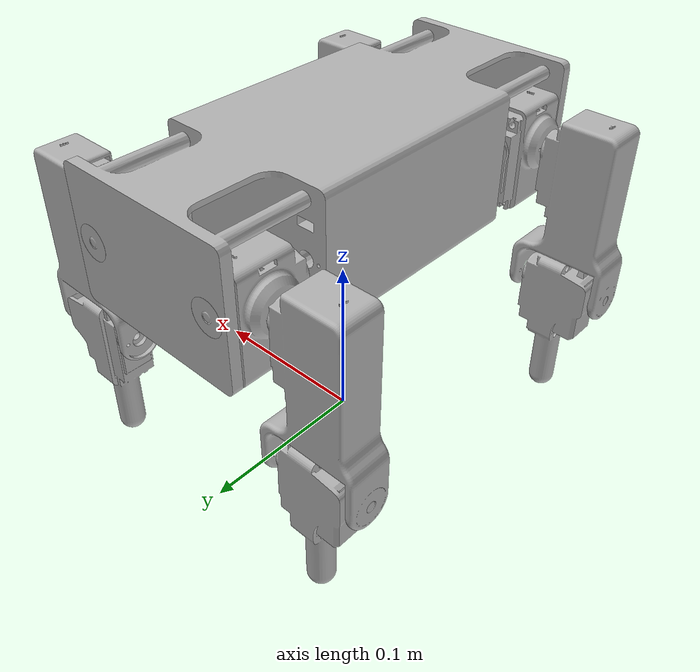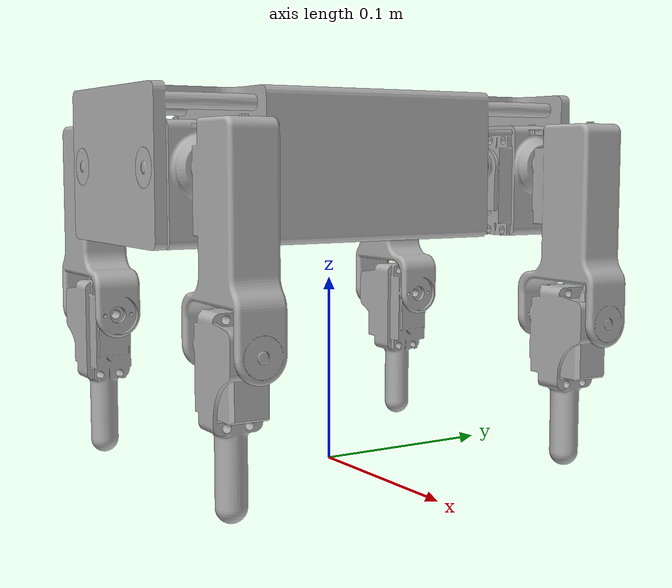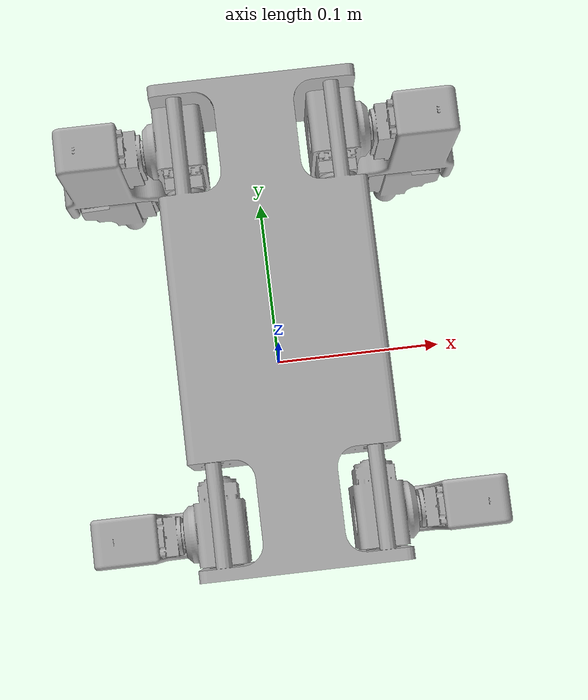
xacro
<?xml version="1.0"?>
<robot name="paws" xmlns:xacro="http://www.ros.org/wiki/xacro">

  <!-- Import all Gazebo-customization elements, including Gazebo colors -->
  <xacro:include filename="$(find paws_description)/urdf/paws.gazebo" />
  <!-- Import Rviz colors -->
  <xacro:include filename="$(find paws_description)/urdf/materials.xacro" />

  <!-- Used for fixing robot to Gazebo 'base_link' -->

  <link name="base_link">
    <inertial>
      <origin xyz="-3.3887279061704396e-14 3.7803002080373026e-07 0.16299137297864616" rpy="0 0 0"/>
      <mass value="2.7836724510562636"/>
      <inertia ixx="0.018553" iyy="0.005153" izz="0.019613" ixy="-0.0" iyz="-0.0" ixz="0.0"/>
    </inertial>
    <visual>
      <origin xyz="0 0 0" rpy="0 0 0"/>
      <geometry>
        <mesh filename="package://paws_description/meshes/base_link.stl" scale="0.001 0.001 0.001"/>
      </geometry>
      <material name="silver"/>
    </visual>
    <collision>
      <origin xyz="0 0 0" rpy="0 0 0"/>
      <geometry>
        <mesh filename="package://paws_description/meshes/base_link.stl" scale="0.001 0.001 0.001"/>
      </geometry>
    </collision>
  </link>

  <link name="lf_link1">
    <inertial>
      <origin xyz="0.0007585154143309389 0.0265191244166023 -0.008803891313980683" rpy="0 0 0"/>
      <mass value="0.38176859480845493"/>
      <inertia ixx="0.000142" iyy="0.000107" izz="7.6e-05" ixy="1e-06" iyz="4e-06" ixz="-2e-06"/>
    </inertial>
    <visual>
      <origin xyz="-0.04 0.1239 -0.16" rpy="0 0 0"/>
      <geometry>
        <mesh filename="package://paws_description/meshes/lf_link1.stl" scale="0.001 0.001 0.001"/>
      </geometry>
      <material name="silver"/>
    </visual>
    <collision>
      <origin xyz="-0.04 0.1239 -0.16" rpy="0 0 0"/>
      <geometry>
        <mesh filename="package://paws_description/meshes/lf_link1.stl" scale="0.001 0.001 0.001"/>
      </geometry>
    </collision>
  </link>

  <link name="lf_link2">
    <inertial>
      <origin xyz="0.0238860864943441 8.066394597272541e-07 -0.023964271594988623" rpy="0 0 0"/>
      <mass value="0.5117382840662367"/>
      <inertia ixx="0.000396" iyy="0.000467" izz="0.000124" ixy="0.0" iyz="-0.0" ixz="4e-06"/>
    </inertial>
    <visual>
      <origin xyz="-0.0589 0.1 -0.16" rpy="0 0 0"/>
      <geometry>
        <mesh filename="package://paws_description/meshes/lf_link2.stl" scale="0.001 0.001 0.001"/>
      </geometry>
      <material name="silver"/>
    </visual>
    <collision>
      <origin xyz="-0.0589 0.1 -0.16" rpy="0 0 0"/>
      <geometry>
        <mesh filename="package://paws_description/meshes/lf_link2.stl" scale="0.001 0.001 0.001"/>
      </geometry>
    </collision>
  </link>

  <link name="lf_link3">
    <inertial>
      <origin xyz="-0.02949298714149677 9.504231460039092e-07 -0.016772643855060942" rpy="0 0 0"/>
      <mass value="0.36719687455213457"/>
      <inertia ixx="0.000187" iyy="0.000211" izz="5.3e-05" ixy="0.0" iyz="-0.0" ixz="-8e-06"/>
    </inertial>
    <visual>
      <origin xyz="-0.1101 0.1 -0.08" rpy="0 0 0"/>
      <geometry>
        <mesh filename="package://paws_description/meshes/lf_link3.stl" scale="0.001 0.001 0.001"/>
      </geometry>
      <material name="silver"/>
    </visual>
    <collision>
      <origin xyz="-0.1101 0.1 -0.08" rpy="0 0 0"/>
      <geometry>
        <mesh filename="package://paws_description/meshes/lf_link3.stl" scale="0.001 0.001 0.001"/>
      </geometry>
    </collision>
  </link>

  <link name="rf_link1">
    <inertial>
      <origin xyz="-0.0007584708324424178 0.02651901736137817 -0.008804175214866011" rpy="0 0 0"/>
      <mass value="0.3817617631156426"/>
      <inertia ixx="0.000142" iyy="0.000107" izz="7.6e-05" ixy="-1e-06" iyz="4e-06" ixz="2e-06"/>
    </inertial>
    <visual>
      <origin xyz="0.04 0.1239 -0.16" rpy="0 0 0"/>
      <geometry>
        <mesh filename="package://paws_description/meshes/rf_link1.stl" scale="0.001 0.001 0.001"/>
      </geometry>
      <material name="silver"/>
    </visual>
    <collision>
      <origin xyz="0.04 0.1239 -0.16" rpy="0 0 0"/>
      <geometry>
        <mesh filename="package://paws_description/meshes/rf_link1.stl" scale="0.001 0.001 0.001"/>
      </geometry>
    </collision>
  </link>

  <link name="rf_link2">
    <inertial>
      <origin xyz="-0.023886086494344157 8.066394596439874e-07 -0.023964271594988235" rpy="0 0 0"/>
      <mass value="0.5117382840662329"/>
      <inertia ixx="0.000396" iyy="0.000467" izz="0.000124" ixy="-0.0" iyz="-0.0" ixz="-4e-06"/>
    </inertial>
    <visual>
      <origin xyz="0.0589 0.1 -0.16" rpy="0 0 0"/>
      <geometry>
        <mesh filename="package://paws_description/meshes/rf_link2.stl" scale="0.001 0.001 0.001"/>
      </geometry>
      <material name="silver"/>
    </visual>
    <collision>
      <origin xyz="0.0589 0.1 -0.16" rpy="0 0 0"/>
      <geometry>
        <mesh filename="package://paws_description/meshes/rf_link2.stl" scale="0.001 0.001 0.001"/>
      </geometry>
    </collision>
  </link>

  <link name="rf_link3">
    <inertial>
      <origin xyz="0.02949298714149677 9.50423145948398e-07 -0.016772643855060956" rpy="0 0 0"/>
      <mass value="0.36719687455213446"/>
      <inertia ixx="0.000187" iyy="0.000211" izz="5.3e-05" ixy="-0.0" iyz="-0.0" ixz="8e-06"/>
    </inertial>
    <visual>
      <origin xyz="0.1101 0.1 -0.08" rpy="0 0 0"/>
      <geometry>
        <mesh filename="package://paws_description/meshes/rf_link3.stl" scale="0.001 0.001 0.001"/>
      </geometry>
      <material name="silver"/>
    </visual>
    <collision>
      <origin xyz="0.1101 0.1 -0.08" rpy="0 0 0"/>
      <geometry>
        <mesh filename="package://paws_description/meshes/rf_link3.stl" scale="0.001 0.001 0.001"/>
      </geometry>
    </collision>
  </link>

  <link name="lh_link1">
    <inertial>
      <origin xyz="0.0007585154143309389 -0.026518383277426172 -0.008804228882141801" rpy="0 0 0"/>
      <mass value="0.38176859480845515"/>
      <inertia ixx="0.000142" iyy="0.000107" izz="7.6e-05" ixy="-1e-06" iyz="-4e-06" ixz="-2e-06"/>
    </inertial>
    <visual>
      <origin xyz="-0.04 -0.1239 -0.16" rpy="0 0 0"/>
      <geometry>
        <mesh filename="package://paws_description/meshes/lh_link1.stl" scale="0.001 0.001 0.001"/>
      </geometry>
      <material name="silver"/>
    </visual>
    <collision>
      <origin xyz="-0.04 -0.1239 -0.16" rpy="0 0 0"/>
      <geometry>
        <mesh filename="package://paws_description/meshes/lh_link1.stl" scale="0.001 0.001 0.001"/>
      </geometry>
    </collision>
  </link>

  <link name="lh_link2">
    <inertial>
      <origin xyz="0.023886086494346807 -6.550028022744847e-08 -0.02396427159498435" rpy="0 0 0"/>
      <mass value="0.511738284066218"/>
      <inertia ixx="0.000396" iyy="0.000467" izz="0.000124" ixy="-0.0" iyz="0.0" ixz="4e-06"/>
    </inertial>
    <visual>
      <origin xyz="-0.0589 -0.1 -0.16" rpy="0 0 0"/>
      <geometry>
        <mesh filename="package://paws_description/meshes/lh_link2.stl" scale="0.001 0.001 0.001"/>
      </geometry>
      <material name="silver"/>
    </visual>
    <collision>
      <origin xyz="-0.0589 -0.1 -0.16" rpy="0 0 0"/>
      <geometry>
        <mesh filename="package://paws_description/meshes/lh_link2.stl" scale="0.001 0.001 0.001"/>
      </geometry>
    </collision>
  </link>

  <link name="lh_link3">
    <inertial>
      <origin xyz="-0.02949298707436432 -2.0928396962660578e-07 -0.016772643855060318" rpy="0 0 0"/>
      <mass value="0.3671968745521462"/>
      <inertia ixx="0.000187" iyy="0.000211" izz="5.3e-05" ixy="-0.0" iyz="0.0" ixz="-8e-06"/>
    </inertial>
    <visual>
      <origin xyz="-0.1101 -0.1 -0.08" rpy="0 0 0"/>
      <geometry>
        <mesh filename="package://paws_description/meshes/lh_link3.stl" scale="0.001 0.001 0.001"/>
      </geometry>
      <material name="silver"/>
    </visual>
    <collision>
      <origin xyz="-0.1101 -0.1 -0.08" rpy="0 0 0"/>
      <geometry>
        <mesh filename="package://paws_description/meshes/lh_link3.stl" scale="0.001 0.001 0.001"/>
      </geometry>
    </collision>
  </link>

  <link name="rh_link1">
    <inertial>
      <origin xyz="-0.0007584708324424178 -0.026518276222201986 -0.008804260079128517" rpy="0 0 0"/>
      <mass value="0.38176176311564275"/>
      <inertia ixx="0.000142" iyy="0.000107" izz="7.6e-05" ixy="1e-06" iyz="-4e-06" ixz="2e-06"/>
    </inertial>
    <visual>
      <origin xyz="0.04 -0.1239 -0.16" rpy="0 0 0"/>
      <geometry>
        <mesh filename="package://paws_description/meshes/rh_link1.stl" scale="0.001 0.001 0.001"/>
      </geometry>
      <material name="silver"/>
    </visual>
    <collision>
      <origin xyz="0.04 -0.1239 -0.16" rpy="0 0 0"/>
      <geometry>
        <mesh filename="package://paws_description/meshes/rh_link1.stl" scale="0.001 0.001 0.001"/>
      </geometry>
    </collision>
  </link>

  <link name="rh_link2">
    <inertial>
      <origin xyz="-0.023886086494346558 -6.550028014418174e-08 -0.023964271594984987" rpy="0 0 0"/>
      <mass value="0.5117382840662275"/>
      <inertia ixx="0.000396" iyy="0.000467" izz="0.000124" ixy="0.0" iyz="0.0" ixz="-4e-06"/>
    </inertial>
    <visual>
      <origin xyz="0.0589 -0.1 -0.16" rpy="0 0 0"/>
      <geometry>
        <mesh filename="package://paws_description/meshes/rh_link2.stl" scale="0.001 0.001 0.001"/>
      </geometry>
      <material name="silver"/>
    </visual>
    <collision>
      <origin xyz="0.0589 -0.1 -0.16" rpy="0 0 0"/>
      <geometry>
        <mesh filename="package://paws_description/meshes/rh_link2.stl" scale="0.001 0.001 0.001"/>
      </geometry>
    </collision>
  </link>

  <link name="rh_link3">
    <inertial>
      <origin xyz="0.02949298707436461 -2.0928396968211693e-07 -0.016772643855060415" rpy="0 0 0"/>
      <mass value="0.3671968745521463"/>
      <inertia ixx="0.000187" iyy="0.000211" izz="5.3e-05" ixy="0.0" iyz="0.0" ixz="8e-06"/>
    </inertial>
    <visual>
      <origin xyz="0.1101 -0.1 -0.08" rpy="0 0 0"/>
      <geometry>
        <mesh filename="package://paws_description/meshes/rh_link3.stl" scale="0.001 0.001 0.001"/>
      </geometry>
      <material name="silver"/>
    </visual>
    <collision>
      <origin xyz="0.1101 -0.1 -0.08" rpy="0 0 0"/>
      <geometry>
        <mesh filename="package://paws_description/meshes/rh_link3.stl" scale="0.001 0.001 0.001"/>
      </geometry>
    </collision>
  </link>

  <joint name="lf_j1" type="continuous">
    <origin xyz="0.04 -0.1239 0.16" rpy="0 0 0"/>
    <parent link="base_link"/>
    <child link="lf_link1"/>
    <axis xyz="0.0 1.0 0.0"/>
    <dynamics damping="0.2"/>
  </joint>

  <joint name="lf_j2" type="continuous">
    <origin xyz="0.0189 0.0239 0.0" rpy="0 0 0"/>
    <parent link="lf_link1"/>
    <child link="lf_link2"/>
    <axis xyz="-1.0 0.0 0.0"/>
    <dynamics damping="0.2"/>
  </joint>

  <joint name="lf_j3" type="continuous">
    <origin xyz="0.0512 0.0 -0.08" rpy="0 0 0"/>
    <parent link="lf_link2"/>
    <child link="lf_link3"/>
    <axis xyz="-1.0 0.0 0.0"/>
    <dynamics damping="0.2"/>
  </joint>

  <joint name="rf_j1" type="continuous">
    <origin xyz="-0.04 -0.1239 0.16" rpy="0 0 0"/>
    <parent link="base_link"/>
    <child link="rf_link1"/>
    <axis xyz="0.0 1.0 0.0"/>
    <dynamics damping="0.2"/>
  </joint>

  <joint name="rf_j2" type="continuous">
    <origin xyz="-0.0189 0.0239 0.0" rpy="0 0 0"/>
    <parent link="rf_link1"/>
    <child link="rf_link2"/>
    <axis xyz="1.0 -0.0 -0.0"/>
    <dynamics damping="0.2"/>
  </joint>

  <joint name="rf_j3" type="continuous">
    <origin xyz="-0.0512 0.0 -0.08" rpy="0 0 0"/>
    <parent link="rf_link2"/>
    <child link="rf_link3"/>
    <axis xyz="1.0 -0.0 -0.0"/>
    <dynamics damping="0.2"/>
  </joint>

  <joint name="lh_j1" type="continuous">
    <origin xyz="0.04 0.1239 0.16" rpy="0 0 0"/>
    <parent link="base_link"/>
    <child link="lh_link1"/>
    <axis xyz="0.0 -1.0 -0.0"/>
    <dynamics damping="0.2"/>
  </joint>

  <joint name="lh_j2" type="continuous">
    <origin xyz="0.0189 -0.0239 0.0" rpy="0 0 0"/>
    <parent link="lh_link1"/>
    <child link="lh_link2"/>
    <axis xyz="-1.0 -0.0 0.0"/>
    <dynamics damping="0.2"/>
  </joint>

  <joint name="lh_j3" type="continuous">
    <origin xyz="0.0512 0.0 -0.08" rpy="0 0 0"/>
    <parent link="lh_link2"/>
    <child link="lh_link3"/>
    <axis xyz="-1.0 -0.0 0.0"/>
    <dynamics damping="0.2"/>
  </joint>

  <joint name="rh_j1" type="continuous">
    <origin xyz="-0.04 0.1239 0.16" rpy="0 0 0"/>
    <parent link="base_link"/>
    <child link="rh_link1"/>
    <axis xyz="0.0 -1.0 -0.0"/>
    <dynamics damping="0.2"/>
  </joint>

  <joint name="rh_j2" type="continuous">
    <origin xyz="-0.0189 -0.0239 0.0" rpy="0 0 0"/>
    <parent link="rh_link1"/>
    <child link="rh_link2"/>
    <axis xyz="1.0 0.0 -0.0"/>
    <dynamics damping="0.2"/>
  </joint>

  <joint name="rh_j3" type="continuous">
    <origin xyz="-0.0512 0.0 -0.08" rpy="0 0 0"/>
    <parent link="rh_link2"/>
    <child link="rh_link3"/>
    <axis xyz="1.0 0.0 -0.0"/>
    <dynamics damping="0.2"/>
  </joint>

  <transmission name="lf_j1_tran">
    <type>transmission_interface/SimpleTransmission</type>
    <joint name="lf_j1">
      <hardwareInterface>hardware_interface/EffortJointInterface</hardwareInterface>
    </joint>
    <actuator name="lf_j1_actr">
      <hardwareInterface>hardware_interface/EffortJointInterface</hardwareInterface>
      <mechanicalReduction>1</mechanicalReduction>
    </actuator>
  </transmission>

  <transmission name="lf_j2_tran">
    <type>transmission_interface/SimpleTransmission</type>
    <joint name="lf_j2">
      <hardwareInterface>hardware_interface/EffortJointInterface</hardwareInterface>
    </joint>
    <actuator name="lf_j2_actr">
      <hardwareInterface>hardware_interface/EffortJointInterface</hardwareInterface>
      <mechanicalReduction>1</mechanicalReduction>
    </actuator>
  </transmission>

  <transmission name="lf_j3_tran">
    <type>transmission_interface/SimpleTransmission</type>
    <joint name="lf_j3">
      <hardwareInterface>hardware_interface/EffortJointInterface</hardwareInterface>
    </joint>
    <actuator name="lf_j3_actr">
      <hardwareInterface>hardware_interface/EffortJointInterface</hardwareInterface>
      <mechanicalReduction>1</mechanicalReduction>
    </actuator>
  </transmission>

  <transmission name="rf_j1_tran">
    <type>transmission_interface/SimpleTransmission</type>
    <joint name="rf_j1">
      <hardwareInterface>hardware_interface/EffortJointInterface</hardwareInterface>
    </joint>
    <actuator name="rf_j1_actr">
      <hardwareInterface>hardware_interface/EffortJointInterface</hardwareInterface>
      <mechanicalReduction>1</mechanicalReduction>
    </actuator>
  </transmission>

  <transmission name="rf_j2_tran">
    <type>transmission_interface/SimpleTransmission</type>
    <joint name="rf_j2">
      <hardwareInterface>hardware_interface/EffortJointInterface</hardwareInterface>
    </joint>
    <actuator name="rf_j2_actr">
      <hardwareInterface>hardware_interface/EffortJointInterface</hardwareInterface>
      <mechanicalReduction>1</mechanicalReduction>
    </actuator>
  </transmission>

  <transmission name="rf_j3_tran">
    <type>transmission_interface/SimpleTransmission</type>
    <joint name="rf_j3">
      <hardwareInterface>hardware_interface/EffortJointInterface</hardwareInterface>
    </joint>
    <actuator name="rf_j3_actr">
      <hardwareInterface>hardware_interface/EffortJointInterface</hardwareInterface>
      <mechanicalReduction>1</mechanicalReduction>
    </actuator>
  </transmission>

  <transmission name="lh_j1_tran">
    <type>transmission_interface/SimpleTransmission</type>
    <joint name="lh_j1">
      <hardwareInterface>hardware_interface/EffortJointInterface</hardwareInterface>
    </joint>
    <actuator name="lh_j1_actr">
      <hardwareInterface>hardware_interface/EffortJointInterface</hardwareInterface>
      <mechanicalReduction>1</mechanicalReduction>
    </actuator>
  </transmission>

  <transmission name="lh_j2_tran">
    <type>transmission_interface/SimpleTransmission</type>
    <joint name="lh_j2">
      <hardwareInterface>hardware_interface/EffortJointInterface</hardwareInterface>
    </joint>
    <actuator name="lh_j2_actr">
      <hardwareInterface>hardware_interface/EffortJointInterface</hardwareInterface>
      <mechanicalReduction>1</mechanicalReduction>
    </actuator>
  </transmission>

  <transmission name="lh_j3_tran">
    <type>transmission_interface/SimpleTransmission</type>
    <joint name="lh_j3">
      <hardwareInterface>hardware_interface/EffortJointInterface</hardwareInterface>
    </joint>
    <actuator name="lh_j3_actr">
      <hardwareInterface>hardware_interface/EffortJointInterface</hardwareInterface>
      <mechanicalReduction>1</mechanicalReduction>
    </actuator>
  </transmission>

  <transmission name="rh_j1_tran">
    <type>transmission_interface/SimpleTransmission</type>
    <joint name="rh_j1">
      <hardwareInterface>hardware_interface/EffortJointInterface</hardwareInterface>
    </joint>
    <actuator name="rh_j1_actr">
      <hardwareInterface>hardware_interface/EffortJointInterface</hardwareInterface>
      <mechanicalReduction>1</mechanicalReduction>
    </actuator>
  </transmission>

  <transmission name="rh_j2_tran">
    <type>transmission_interface/SimpleTransmission</type>
    <joint name="rh_j2">
      <hardwareInterface>hardware_interface/EffortJointInterface</hardwareInterface>
    </joint>
    <actuator name="rh_j2_actr">
      <hardwareInterface>hardware_interface/EffortJointInterface</hardwareInterface>
      <mechanicalReduction>1</mechanicalReduction>
    </actuator>
  </transmission>

  <transmission name="rh_j3_tran">
    <type>transmission_interface/SimpleTransmission</type>
    <joint name="rh_j3">
      <hardwareInterface>hardware_interface/EffortJointInterface</hardwareInterface>
    </joint>
    <actuator name="rh_j3_actr">
      <hardwareInterface>hardware_interface/EffortJointInterface</hardwareInterface>
      <mechanicalReduction>1</mechanicalReduction>
    </actuator>
  </transmission>

</robot>

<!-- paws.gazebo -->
<robot name="paws" xmlns:xacro="http://www.ros.org/wiki/xacro" >

  <!-- ros_control plugin -->
  <gazebo>
    <plugin name="gazebo_ros_control" filename="libgazebo_ros_control.so">
      <robotNamespace>/paws</robotNamespace>
      <robotSimType>gazebo_ros_control/DefaultRobotHWSim</robotSimType>
    </plugin>
  </gazebo>

  <xacro:property name="body_color" value="Gazebo/Silver" />

  <gazebo reference="base_link">
    <material>${body_color}</material>
    <mu1>5.0</mu1>
    <mu2>5.0</mu2>
    <selfCollide>true</selfCollide>
    <gravity>true</gravity>
    <fdir1>1 0 0</fdir1>
    <maxContacts>1</maxContacts>
    <minDepth>0.005</minDepth>
  </gazebo>

  <gazebo reference="lf_link1">
    <material>${body_color}</material>
    <mu1>5.0</mu1>
    <mu2>5.0</mu2>
    <selfCollide>true</selfCollide>
    <gravity>true</gravity>
    <fdir1>1 0 0</fdir1>
    <maxContacts>1</maxContacts>
    <minDepth>0.005</minDepth>
  </gazebo>

  <gazebo reference="lf_link2">
    <material>${body_color}</material>
    <mu1>5.0</mu1>
    <mu2>5.0</mu2>
    <selfCollide>true</selfCollide>
    <gravity>true</gravity>
    <fdir1>1 0 0</fdir1>
    <maxContacts>1</maxContacts>
    <minDepth>0.005</minDepth>
  </gazebo>

  <gazebo reference="lf_link3">
    <material>${body_color}</material>
    <mu1>5.0</mu1>
    <mu2>5.0</mu2>
    <selfCollide>true</selfCollide>
    <gravity>true</gravity>
    <fdir1>1 0 0</fdir1>
    <maxContacts>1</maxContacts>
    <minDepth>0.005</minDepth>
  </gazebo>

  <gazebo reference="rf_link1">
    <material>${body_color}</material>
    <mu1>5.0</mu1>
    <mu2>5.0</mu2>
    <selfCollide>true</selfCollide>
    <gravity>true</gravity>
    <fdir1>1 0 0</fdir1>
    <maxContacts>1</maxContacts>
    <minDepth>0.005</minDepth>
  </gazebo>

  <gazebo reference="rf_link2">
    <material>${body_color}</material>
    <mu1>5.0</mu1>
    <mu2>5.0</mu2>
    <selfCollide>true</selfCollide>
    <gravity>true</gravity>
    <fdir1>1 0 0</fdir1>
    <maxContacts>1</maxContacts>
    <minDepth>0.005</minDepth>
  </gazebo>

  <gazebo reference="rf_link3">
    <material>${body_color}</material>
    <mu1>5.0</mu1>
    <mu2>5.0</mu2>
    <selfCollide>true</selfCollide>
    <gravity>true</gravity>
    <fdir1>1 0 0</fdir1>
    <maxContacts>1</maxContacts>
    <minDepth>0.005</minDepth>
  </gazebo>

  <gazebo reference="lh_link1">
    <material>${body_color}</material>
    <mu1>5.0</mu1>
    <mu2>5.0</mu2>
    <selfCollide>true</selfCollide>
    <gravity>true</gravity>
    <fdir1>1 0 0</fdir1>
    <maxContacts>1</maxContacts>
    <minDepth>0.005</minDepth>
  </gazebo>

  <gazebo reference="lh_link2">
    <material>${body_color}</material>
    <mu1>5.0</mu1>
    <mu2>5.0</mu2>
    <selfCollide>true</selfCollide>
    <gravity>true</gravity>
    <fdir1>1 0 0</fdir1>
    <maxContacts>1</maxContacts>
    <minDepth>0.005</minDepth>
  </gazebo>

  <gazebo reference="lh_link3">
    <material>${body_color}</material>
    <mu1>5.0</mu1>
    <mu2>5.0</mu2>
    <selfCollide>true</selfCollide>
    <gravity>true</gravity>
    <fdir1>1 0 0</fdir1>
    <maxContacts>1</maxContacts>
    <minDepth>0.005</minDepth>
  </gazebo>

  <gazebo reference="rh_link1">
    <material>${body_color}</material>
    <mu1>5.0</mu1>
    <mu2>5.0</mu2>
    <selfCollide>true</selfCollide>
    <gravity>true</gravity>
    <fdir1>1 0 0</fdir1>
    <maxContacts>1</maxContacts>
    <minDepth>0.005</minDepth>
  </gazebo>

  <gazebo reference="rh_link2">
    <material>${body_color}</material>
    <mu1>5.0</mu1>
    <mu2>5.0</mu2>
    <selfCollide>true</selfCollide>
    <gravity>true</gravity>
    <fdir1>1 0 0</fdir1>
    <maxContacts>1</maxContacts>
    <minDepth>0.005</minDepth>
  </gazebo>

  <gazebo reference="rh_link3">
    <material>${body_color}</material>
    <mu1>5.0</mu1>
    <mu2>5.0</mu2>
    <selfCollide>true</selfCollide>
    <gravity>true</gravity>
    <fdir1>1 0 0</fdir1>
    <maxContacts>1</maxContacts>
    <minDepth>0.005</minDepth>
  </gazebo>

</robot>

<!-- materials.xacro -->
<robot name="paws" xmlns:xacro="http://www.ros.org/wiki/xacro" >

  <material name="silver">
    <color rgba="0.700 0.700 0.700 1.000"/>
  </material>

</robot>
